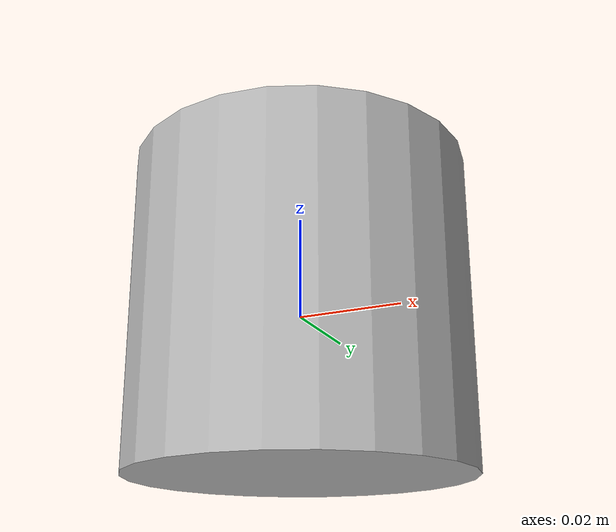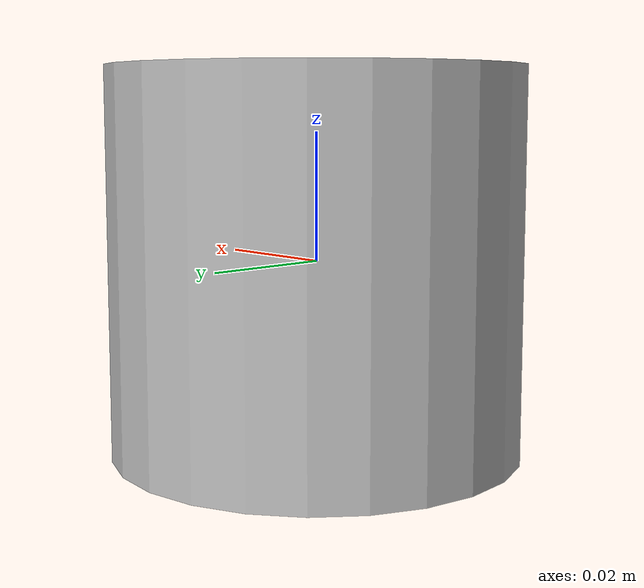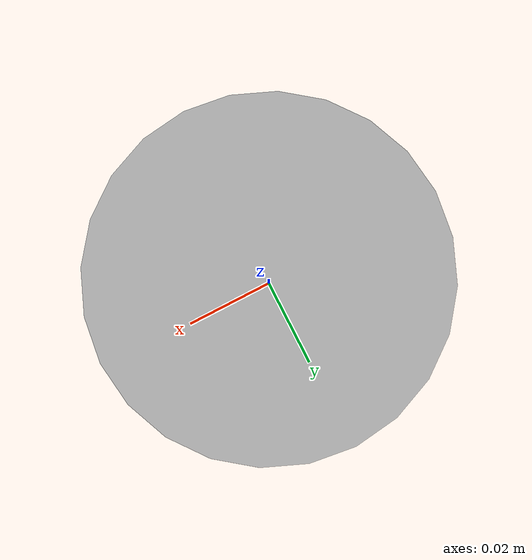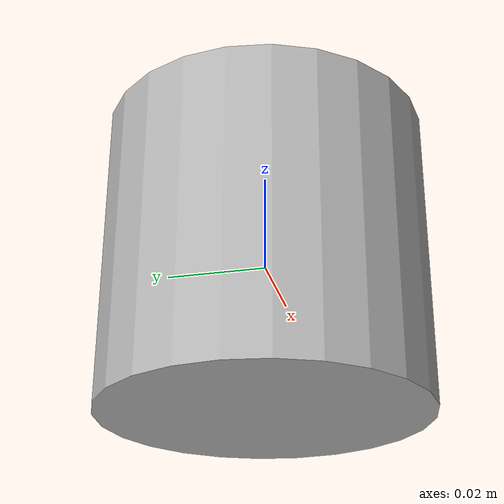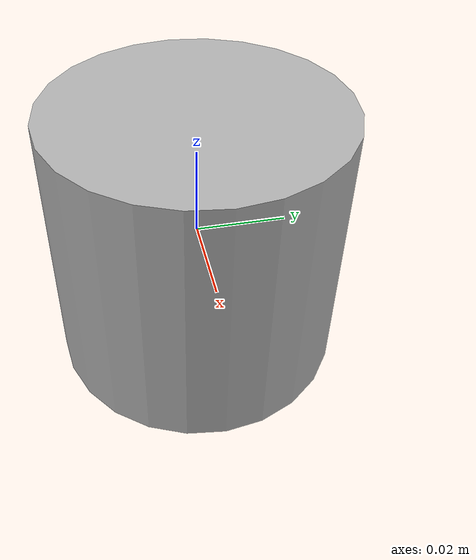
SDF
<?xml version="1.0" encoding="UTF-8"?>
<sdf version='1.9'>
  <model name='mid360_lidar'>
    <link name='lidar_link'>
      <!-- Custom sensor with RGL plugin that simulates lidar -->
      <sensor name="RGLsensor" type="custom">
        <plugin filename="RGLServerPluginInstance" name="rgl::RGLServerPluginInstance">
          <update_rate>20</update_rate>
          <range>
            <min>1.0</min>
            <max>50.</max>
          </range>
          <update_on_paused_sim>false</update_on_paused_sim>
          <topic>livox/lidar</topic>
          <frame>camera_init</frame>
          <pattern_preset>Livox Mid360</pattern_preset>
          </plugin>
      </sensor>
      <inertial>
          <inertia>
            <ixx>0.01</ixx>
            <ixy>0</ixy>
            <ixz>0</ixz>
            <iyy>0.01</iyy>
            <iyz>0</iyz>
            <izz>0.01</izz>
          </inertia>
          <mass>0.1</mass>
        </inertial>
        <collision name='lidar_collision'>
          <geometry>
            <cylinder>
              <radius>0.032</radius>
              <length>0.06</length>
            </cylinder>
          </geometry>
          <surface>
            <friction>
              <ode/>
            </friction>
            <bounce/>
            <contact/>
          </surface>
        </collision>
        <visual name='lidar_visual'>
          <geometry>
            <cylinder>
              <radius>0.032</radius>
              <length>0.06</length>
            </cylinder>
          </geometry>
          <material>
            <ambient>0.3 0.3 0.3 1</ambient>
            <diffuse>0.7 0.7 0.7 1</diffuse>
            <specular>1 1 1 1</specular>
          </material>
        </visual>
      </link>

  </model>
</sdf>
